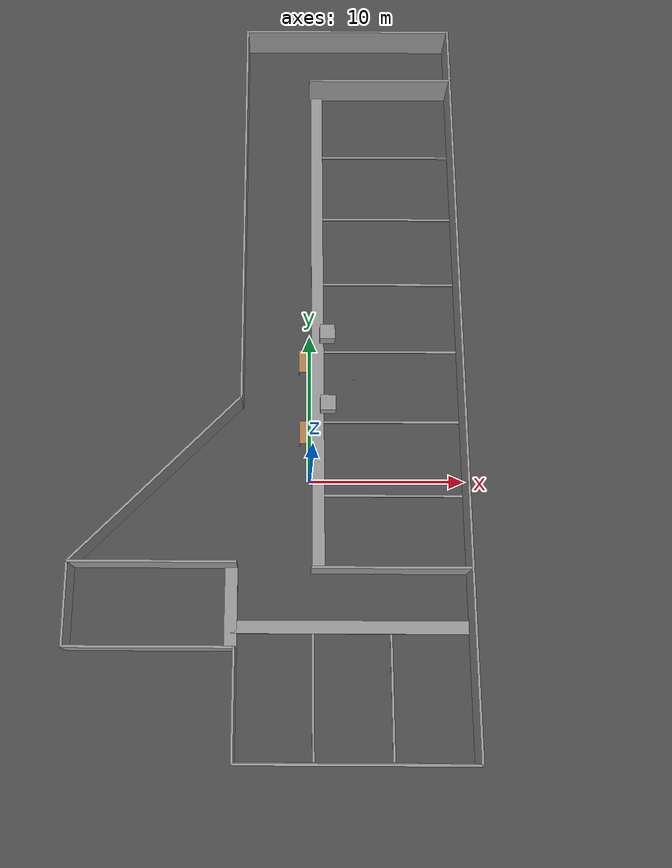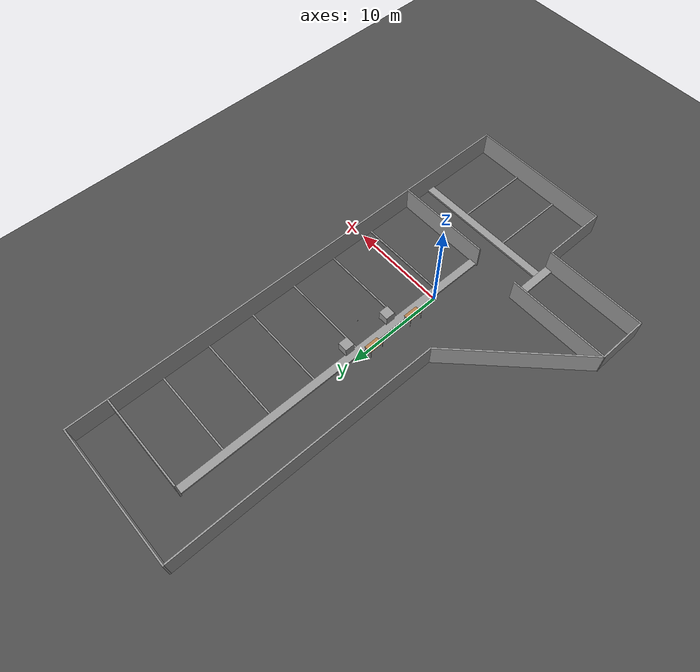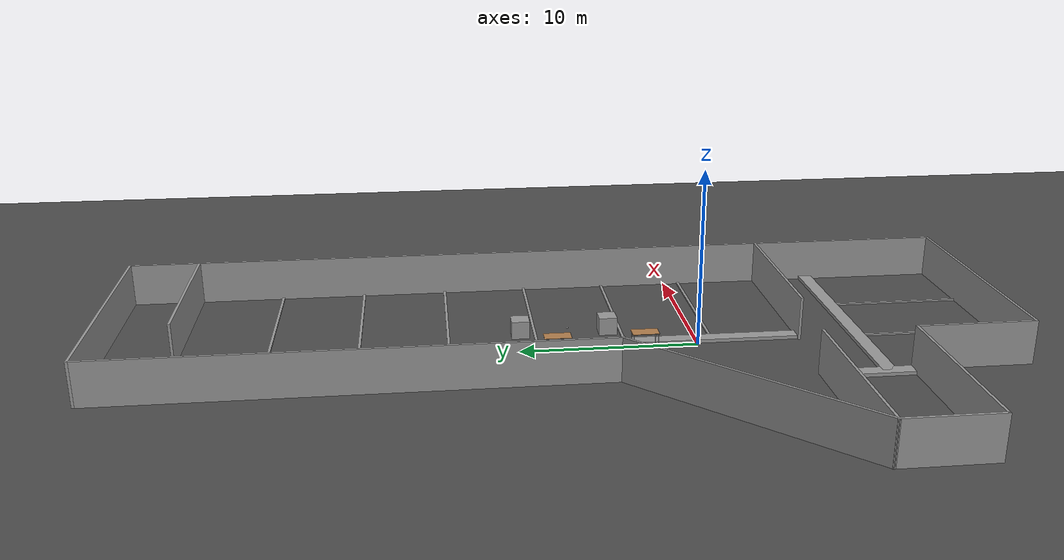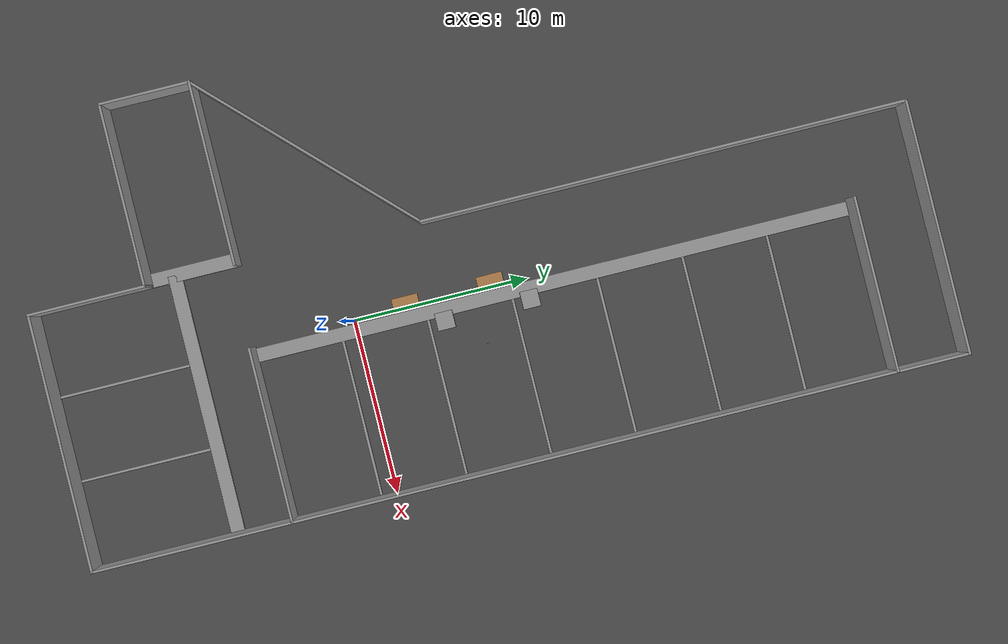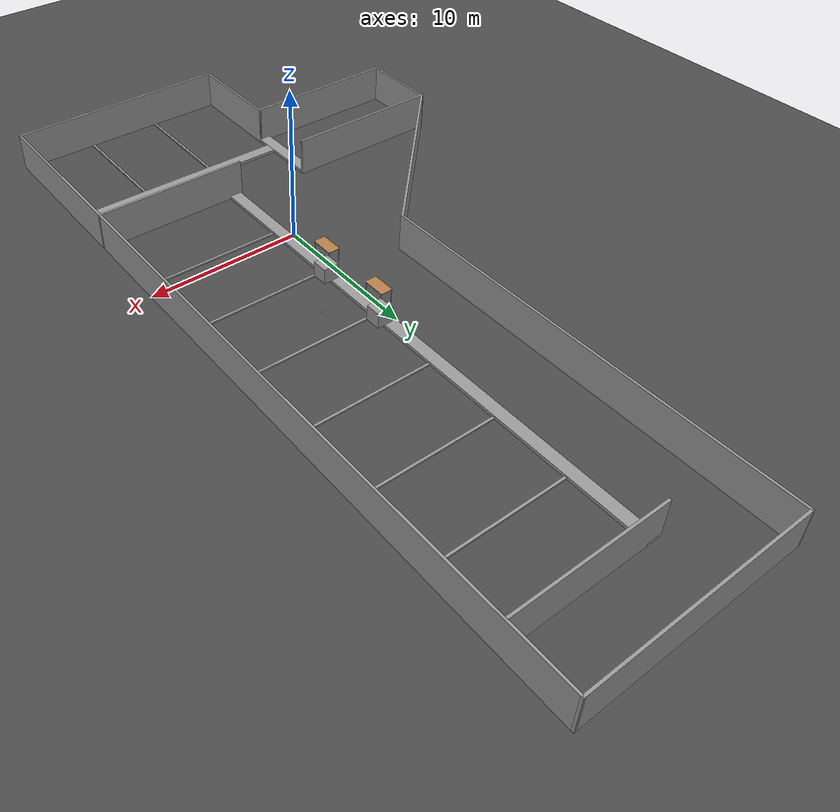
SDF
<sdf version="1.6">
 <world name="default">
  <model name="table_clone">
   <static>1</static>
   <link name="link">
    <collision name="surface">
     <pose>0 0 1 0 -0 0</pose>
     <geometry><box><size>1.5 0.8 0.03</size></box></geometry>
     <surface><friction><ode><mu>0.6</mu><mu2>0.6</mu2></ode></friction></surface>
    </collision>
    <visual name="visual1">
     <pose>0 0 1 0 -0 0</pose>
     <geometry><box><size>1.5 0.8 0.03</size></box></geometry>
     <material>
      <script><uri>file://media/materials/scripts/gazebo.material</uri><name>Gazebo/Wood</name></script>
     </material>
    </visual>
    <collision name="front_left_leg">
     <pose>0.68 0.38 0.5 0 -0 0</pose>
     <geometry><cylinder><radius>0.02</radius><length>1</length></cylinder></geometry>
    </collision>
    <visual name="front_left_leg">
     <pose>0.68 0.38 0.5 0 -0 0</pose>
     <geometry><cylinder><radius>0.02</radius><length>1</length></cylinder></geometry>
     <material>
      <script><uri>file://media/materials/scripts/gazebo.material</uri><name>Gazebo/Grey</name></script>
     </material>
    </visual>
    <collision name="front_right_leg">
     <pose>0.68 -0.38 0.5 0 -0 0</pose>
     <geometry><cylinder><radius>0.02</radius><length>1</length></cylinder></geometry>
    </collision>
    <visual name="front_right_leg">
     <pose>0.68 -0.38 0.5 0 -0 0</pose>
     <geometry><cylinder><radius>0.02</radius><length>1</length></cylinder></geometry>
     <material>
      <script><uri>file://media/materials/scripts/gazebo.material</uri><name>Gazebo/Grey</name></script>
     </material>
    </visual>
    <collision name="back_right_leg">
     <pose>-0.68 -0.38 0.5 0 -0 0</pose>
     <geometry><cylinder><radius>0.02</radius><length>1</length></cylinder></geometry>
    </collision>
    <visual name="back_right_leg">
     <pose>-0.68 -0.38 0.5 0 -0 0</pose>
     <geometry><cylinder><radius>0.02</radius><length>1</length></cylinder></geometry>
     <material>
      <script><uri>file://media/materials/scripts/gazebo.material</uri><name>Gazebo/Grey</name></script>
     </material>
    </visual>
    <collision name="back_left_leg">
     <pose>-0.68 0.38 0.5 0 -0 0</pose>
     <geometry><cylinder><radius>0.02</radius><length>1</length></cylinder></geometry>
    </collision>
    <visual name="back_left_leg">
     <pose>-0.68 0.38 0.5 0 -0 0</pose>
     <geometry><cylinder><radius>0.02</radius><length>1</length></cylinder></geometry>
     <material>
      <script><uri>file://media/materials/scripts/gazebo.material</uri><name>Gazebo/Grey</name></script>
     </material>
    </visual>
   </link>
   <pose>-0.263897 3.07041 0 0 0 -1.56764</pose>
  </model>
  <model name="table_clone_clone_0">
   <static>1</static>
   <link name="link">
    <collision name="surface">
     <pose>0 0 1 0 -0 0</pose>
     <geometry><box><size>1.5 0.8 0.03</size></box></geometry>
     <surface><friction><ode><mu>0.6</mu><mu2>0.6</mu2></ode></friction></surface>
    </collision>
    <visual name="visual1">
     <pose>0 0 1 0 -0 0</pose>
     <geometry><box><size>1.5 0.8 0.03</size></box></geometry>
     <material>
      <script><uri>file://media/materials/scripts/gazebo.material</uri><name>Gazebo/Wood</name></script>
     </material>
    </visual>
    <collision name="front_left_leg">
     <pose>0.68 0.38 0.5 0 -0 0</pose>
     <geometry><cylinder><radius>0.02</radius><length>1</length></cylinder></geometry>
    </collision>
    <visual name="front_left_leg">
     <pose>0.68 0.38 0.5 0 -0 0</pose>
     <geometry><cylinder><radius>0.02</radius><length>1</length></cylinder></geometry>
     <material>
      <script><uri>file://media/materials/scripts/gazebo.material</uri><name>Gazebo/Grey</name></script>
     </material>
    </visual>
    <collision name="front_right_leg">
     <pose>0.68 -0.38 0.5 0 -0 0</pose>
     <geometry><cylinder><radius>0.02</radius><length>1</length></cylinder></geometry>
    </collision>
    <visual name="front_right_leg">
     <pose>0.68 -0.38 0.5 0 -0 0</pose>
     <geometry><cylinder><radius>0.02</radius><length>1</length></cylinder></geometry>
     <material>
      <script><uri>file://media/materials/scripts/gazebo.material</uri><name>Gazebo/Grey</name></script>
     </material>
    </visual>
    <collision name="back_right_leg">
     <pose>-0.68 -0.38 0.5 0 -0 0</pose>
     <geometry><cylinder><radius>0.02</radius><length>1</length></cylinder></geometry>
    </collision>
    <visual name="back_right_leg">
     <pose>-0.68 -0.38 0.5 0 -0 0</pose>
     <geometry><cylinder><radius>0.02</radius><length>1</length></cylinder></geometry>
     <material>
      <script><uri>file://media/materials/scripts/gazebo.material</uri><name>Gazebo/Grey</name></script>
     </material>
    </visual>
    <collision name="back_left_leg">
     <pose>-0.68 0.38 0.5 0 -0 0</pose>
     <geometry><cylinder><radius>0.02</radius><length>1</length></cylinder></geometry>
    </collision>
    <visual name="back_left_leg">
     <pose>-0.68 0.38 0.5 0 -0 0</pose>
     <geometry><cylinder><radius>0.02</radius><length>1</length></cylinder></geometry>
     <material>
      <script><uri>file://media/materials/scripts/gazebo.material</uri><name>Gazebo/Grey</name></script>
     </material>
    </visual>
   </link>
   <pose>-0.311266 7.9439 0 0 0 -1.56764</pose>
  </model>
  <model name="unit_box_4">
   <pose>1.18478 9.88296 1 0 -0 0.000609</pose>
   <link name="link">
    <inertial>
     <mass>1</mass>
     <inertia>
      <ixx>0.166667</ixx>
      <ixy>0</ixy>
      <ixz>0</ixz>
      <iyy>0.166667</iyy>
      <iyz>0</iyz>
      <izz>0.166667</izz>
     </inertia>
    </inertial>
    <collision name="collision"><geometry><box><size>1 1 1</size></box></geometry></collision>
    <visual name="visual">
     <geometry><box><size>1 1 1</size></box></geometry>
     <material>
      <script><name>Gazebo/Grey</name><uri>file://media/materials/scripts/gazebo.material</uri></script>
     </material>
    </visual>
   </link>
  </model>
  <model name="unit_box_5">
   <pose>1.20118 4.9847 1 0 -0 0.000352</pose>
   <link name="link">
    <inertial>
     <mass>1</mass>
     <inertia>
      <ixx>0.166667</ixx>
      <ixy>0</ixy>
      <ixz>0</ixz>
      <iyy>0.166667</iyy>
      <iyz>0</iyz>
      <izz>0.166667</izz>
     </inertia>
    </inertial>
    <collision name="collision"><geometry><box><size>1 1 1</size></box></geometry></collision>
    <visual name="visual">
     <geometry><box><size>1 1 1</size></box></geometry>
     <material>
      <script><name>Gazebo/Grey</name><uri>file://media/materials/scripts/gazebo.material</uri></script>
     </material>
    </visual>
   </link>
  </model>
  <model name="Untitledasdasd">
   <pose>-2.51851 7.69425 0 0 -0 0</pose>
   <link name="Wall_0">
    <collision name="Wall_0_Collision">
     <geometry><box><size>15 0.15 2.5</size></box></geometry>
     <pose>0 0 1.25 0 -0 0</pose>
    </collision>
    <visual name="Wall_0_Visual">
     <pose>0 0 1.25 0 -0 0</pose>
     <geometry><box><size>15 0.15 2.5</size></box></geometry>
     <material>
      <script><uri>file://media/materials/scripts/gazebo.material</uri><name>Gazebo/Grey</name></script>
      <ambient>0.105882 0.0745098 0.0745098 1</ambient>
     </material>
     <meta><layer>0</layer></meta>
    </visual>
    <pose>-7.21413 -7.96136 0 0 -0 -2.35619</pose>
   </link>
   <link name="Wall_14">
    <collision name="Wall_14_Collision">
     <geometry><box><size>27.75 0.15 2.5</size></box></geometry>
     <pose>0 0 1.25 0 -0 0</pose>
    </collision>
    <visual name="Wall_14_Visual">
     <pose>0 0 1.25 0 -0 0</pose>
     <geometry><box><size>27.75 0.15 2.5</size></box></geometry>
     <material>
      <script><uri>file://media/materials/scripts/gazebo.material</uri><name>Gazebo/Grey</name></script>
      <ambient>0.105882 0.0745098 0.0745098 1</ambient>
     </material>
     <meta><layer>0</layer></meta>
    </visual>
    <pose>-1.90935 11.1233 0 0 -0 -1.5708</pose>
   </link>
   <link name="Wall_16">
    <collision name="Wall_16_Collision">
     <geometry><box><size>14.545 0.15 2.5</size></box></geometry>
     <pose>0 0 1.25 0 -0 0</pose>
    </collision>
    <visual name="Wall_16_Visual">
     <pose>0 0 1.25 0 -0 0</pose>
     <geometry><box><size>14.545 0.15 2.5</size></box></geometry>
     <material>
      <script><uri>file://media/materials/scripts/gazebo.material</uri><name>Gazebo/Grey</name></script>
      <ambient>0.105882 0.0745098 0.0745098 1</ambient>
     </material>
     <meta><layer>0</layer></meta>
    </visual>
    <pose>5.28812 24.9308 0 0 -0 0.001049</pose>
   </link>
   <link name="Wall_18">
    <collision name="Wall_18_Collision">
     <geometry><box><size>10 0.15 2.5</size></box></geometry>
     <pose>0 0 1.25 0 -0 0</pose>
    </collision>
    <visual name="Wall_18_Visual">
     <pose>0 0 1.25 0 -0 0</pose>
     <geometry><box><size>10 0.15 2.5</size></box></geometry>
     <material>
      <script><uri>file://media/materials/scripts/gazebo.material</uri><name>Gazebo/Grey</name></script>
      <ambient>0.105882 0.0745098 0.0745098 1</ambient>
     </material>
     <meta><layer>0</layer></meta>
    </visual>
    <pose>7.53565 20.8688 0 0 -0 0</pose>
   </link>
   <link name="Wall_20">
    <collision name="Wall_20_Collision">
     <geometry><box><size>9 0.15 0.1</size></box></geometry>
     <pose>0 0 0.05 0 -0 0</pose>
    </collision>
    <visual name="Wall_20_Visual">
     <pose>0 0 0.05 0 -0 0</pose>
     <geometry><box><size>9 0.15 0.1</size></box></geometry>
     <material>
      <script><uri>file://media/materials/scripts/gazebo.material</uri><name>Gazebo/Grey</name></script>
      <ambient>1 1 1 1</ambient>
     </material>
     <meta><layer>0</layer></meta>
    </visual>
    <pose>7.93325 16.0236 0 0 -0 0</pose>
   </link>
   <link name="Wall_22">
    <collision name="Wall_22_Collision">
     <geometry><box><size>9 0.15 0.1</size></box></geometry>
     <pose>0 0 0.05 0 -0 0</pose>
    </collision>
    <visual name="Wall_22_Visual">
     <pose>0 0 0.05 0 -0 0</pose>
     <geometry><box><size>9 0.15 0.1</size></box></geometry>
     <material>
      <script><uri>file://media/materials/scripts/gazebo.material</uri><name>Gazebo/Grey</name></script>
      <ambient>1 1 1 1</ambient>
     </material>
     <meta><layer>0</layer></meta>
    </visual>
    <pose>7.93325 11.1126 0 0 -0 0</pose>
   </link>
   <link name="Wall_24">
    <collision name="Wall_24_Collision">
     <geometry><box><size>9 0.15 0.1</size></box></geometry>
     <pose>0 0 0.05 0 -0 0</pose>
    </collision>
    <visual name="Wall_24_Visual">
     <pose>0 0 0.05 0 -0 0</pose>
     <geometry><box><size>9 0.15 0.1</size></box></geometry>
     <material>
      <script><uri>file://media/materials/scripts/gazebo.material</uri><name>Gazebo/Grey</name></script>
      <ambient>1 1 1 1</ambient>
     </material>
     <meta><layer>0</layer></meta>
    </visual>
    <pose>7.91425 6.16455 0 0 -0 0</pose>
   </link>
   <link name="Wall_26">
    <collision name="Wall_26_Collision">
     <geometry><box><size>9 0.15 0.1</size></box></geometry>
     <pose>0 0 0.05 0 -0 0</pose>
    </collision>
    <visual name="Wall_26_Visual">
     <pose>0 0 0.05 0 -0 0</pose>
     <geometry><box><size>9 0.15 0.1</size></box></geometry>
     <material>
      <script><uri>file://media/materials/scripts/gazebo.material</uri><name>Gazebo/Grey</name></script>
      <ambient>1 1 1 1</ambient>
     </material>
     <meta><layer>0</layer></meta>
    </visual>
    <pose>7.93325 1.24455 0 0 -0 0</pose>
   </link>
   <link name="Wall_28">
    <collision name="Wall_28_Collision">
     <geometry><box><size>9 0.15 0.1</size></box></geometry>
     <pose>0 0 0.05 0 -0 0</pose>
    </collision>
    <visual name="Wall_28_Visual">
     <pose>0 0 0.05 0 -0 0</pose>
     <geometry><box><size>9 0.15 0.1</size></box></geometry>
     <material>
      <script><uri>file://media/materials/scripts/gazebo.material</uri><name>Gazebo/Grey</name></script>
      <ambient>1 1 1 1</ambient>
     </material>
     <meta><layer>0</layer></meta>
    </visual>
    <pose>7.90425 -3.66545 0 0 -0 0</pose>
   </link>
   <link name="Wall_3">
    <collision name="Wall_3_Collision">
     <geometry><box><size>5.25 0.15 2.5</size></box></geometry>
     <pose>0 0 1.25 0 -0 0</pose>
    </collision>
    <visual name="Wall_3_Visual">
     <pose>0 0 1.25 0 -0 0</pose>
     <geometry><box><size>5.25 0.15 2.5</size></box></geometry>
     <material>
      <script><uri>file://media/materials/scripts/gazebo.material</uri><name>Gazebo/Grey</name></script>
      <ambient>0.105882 0.0745098 0.0745098 1</ambient>
     </material>
     <meta><layer>0</layer></meta>
    </visual>
    <pose>-12.4644 -15.7616 0 0 -0 -1.5708</pose>
   </link>
   <link name="Wall_30">
    <collision name="Wall_30_Collision">
     <geometry><box><size>9 0.15 0.1</size></box></geometry>
     <pose>0 0 0.05 0 -0 0</pose>
    </collision>
    <visual name="Wall_30_Visual">
     <pose>0 0 0.05 0 -0 0</pose>
     <geometry><box><size>9 0.15 0.1</size></box></geometry>
     <material>
      <script><uri>file://media/materials/scripts/gazebo.material</uri><name>Gazebo/Grey</name></script>
      <ambient>1 1 1 1</ambient>
     </material>
     <meta><layer>0</layer></meta>
    </visual>
    <pose>7.93325 -8.60445 0 0 -0 0</pose>
   </link>
   <link name="Wall_33">
    <collision name="Wall_33_Collision">
     <geometry><box><size>10 0.15 2.5</size></box></geometry>
     <pose>0 0 1.25 0 -0 0</pose>
    </collision>
    <visual name="Wall_33_Visual">
     <pose>0 0 1.25 0 -0 0</pose>
     <geometry><box><size>10 0.15 2.5</size></box></geometry>
     <material>
      <script><uri>file://media/materials/scripts/gazebo.material</uri><name>Gazebo/Grey</name></script>
      <ambient>0.105882 0.0745098 0.0745098 1</ambient>
     </material>
     <meta><layer>0</layer></meta>
    </visual>
    <pose>7.57047 -13.5431 0 0 -0 0</pose>
   </link>
   <link name="Wall_37">
    <collision name="Wall_37_Collision">
     <geometry><box><size>15 0.8 0.2</size></box></geometry>
     <pose>0 0 0.1 0 -0 0</pose>
    </collision>
    <visual name="Wall_37_Visual">
     <pose>0 0 0.1 0 -0 0</pose>
     <geometry><box><size>15 0.8 0.2</size></box></geometry>
     <material>
      <script><uri>file://media/materials/scripts/gazebo.material</uri><name>Gazebo/Grey</name></script>
      <ambient>1 1 1 1</ambient>
     </material>
     <meta><layer>0</layer></meta>
    </visual>
    <pose>5.05877 -16.9274 0 0 -0 0</pose>
   </link>
   <link name="Wall_40">
    <collision name="Wall_40_Collision">
     <geometry><box><size>5.25 0.8 0.2</size></box></geometry>
     <pose>0 0 0.1 0 -0 0</pose>
    </collision>
    <visual name="Wall_40_Visual">
     <pose>0 0 0.1 0 -0 0</pose>
     <geometry><box><size>5.25 0.8 0.2</size></box></geometry>
     <material>
      <script><uri>file://media/materials/scripts/gazebo.material</uri><name>Gazebo/Grey</name></script>
      <ambient>1 1 1 1</ambient>
     </material>
     <meta><layer>0</layer></meta>
    </visual>
    <pose>-2.43969 -15.7711 0 0 -0 -1.5708</pose>
   </link>
   <link name="Wall_43">
    <collision name="Wall_43_Collision">
     <geometry><box><size>7.75 0.15 0.1</size></box></geometry>
     <pose>0 0 0.05 0 -0 0</pose>
    </collision>
    <visual name="Wall_43_Visual">
     <pose>0 0 0.05 0 -0 0</pose>
     <geometry><box><size>7.75 0.15 0.1</size></box></geometry>
     <material>
      <script><uri>file://media/materials/scripts/gazebo.material</uri><name>Gazebo/Grey</name></script>
      <ambient>1 1 1 1</ambient>
     </material>
     <meta><layer>0</layer></meta>
    </visual>
    <pose>2.70025 -21.0684 0 0 -0 1.5708</pose>
   </link>
   <link name="Wall_45">
    <collision name="Wall_45_Collision">
     <geometry><box><size>7.75 0.15 0.1</size></box></geometry>
     <pose>0 0 0.05 0 -0 0</pose>
    </collision>
    <visual name="Wall_45_Visual">
     <pose>0 0 0.05 0 -0 0</pose>
     <geometry><box><size>7.75 0.15 0.1</size></box></geometry>
     <material>
      <script><uri>file://media/materials/scripts/gazebo.material</uri><name>Gazebo/Grey</name></script>
      <ambient>1 1 1 1</ambient>
     </material>
     <meta><layer>0</layer></meta>
    </visual>
    <pose>7.57625 -21.1384 0 0 -0 1.5708</pose>
   </link>
   <link name="Wall_47">
    <collision name="Wall_47_Collision">
     <geometry><box><size>10.5 0.15 2.5</size></box></geometry>
     <pose>0 0 1.25 0 -0 0</pose>
    </collision>
    <visual name="Wall_47_Visual">
     <pose>0 0 1.25 0 -0 0</pose>
     <geometry><box><size>10.5 0.15 2.5</size></box></geometry>
     <material>
      <script><uri>file://media/materials/scripts/gazebo.material</uri><name>Gazebo/Grey</name></script>
      <ambient>0.105882 0.0745098 0.0745098 1</ambient>
     </material>
     <meta><layer>0</layer></meta>
    </visual>
    <pose>-7.2894 -13.2116 0 0 -0 0</pose>
   </link>
   <link name="Wall_49">
    <collision name="Wall_49_Collision">
     <geometry><box><size>34.5 0.8 0.2</size></box></geometry>
     <pose>0 0 0.1 0 -0 0</pose>
    </collision>
    <visual name="Wall_49_Visual">
     <pose>0 0 0.1 0 -0 0</pose>
     <geometry><box><size>34.5 0.8 0.2</size></box></geometry>
     <material>
      <script><uri>file://media/materials/scripts/gazebo.material</uri><name>Gazebo/Grey</name></script>
      <ambient>1 1 1 1</ambient>
     </material>
     <meta><layer>0</layer></meta>
    </visual>
    <pose>3.07569 3.69647 0 0 -0 -1.5708</pose>
   </link>
   <link name="Wall_6">
    <collision name="Wall_6_Collision">
     <geometry><box><size>10.5 0.15 2.5</size></box></geometry>
     <pose>0 0 1.25 0 -0 0</pose>
    </collision>
    <visual name="Wall_6_Visual">
     <pose>0 0 1.25 0 -0 0</pose>
     <geometry><box><size>10.5 0.15 2.5</size></box></geometry>
     <material>
      <script><uri>file://media/materials/scripts/gazebo.material</uri><name>Gazebo/Grey</name></script>
      <ambient>0.105882 0.0745098 0.0745098 1</ambient>
     </material>
     <meta><layer>0</layer></meta>
    </visual>
    <pose>-7.2894 -18.3116 0 0 -0 0</pose>
   </link>
   <link name="Wall_7">
    <collision name="Wall_7_Collision">
     <geometry><box><size>6.75 0.15 2.5</size></box></geometry>
     <pose>0 0 1.25 0 -0 0</pose>
    </collision>
    <visual name="Wall_7_Visual">
     <pose>0 0 1.25 0 -0 0</pose>
     <geometry><box><size>6.75 0.15 2.5</size></box></geometry>
     <material>
      <script><uri>file://media/materials/scripts/gazebo.material</uri><name>Gazebo/Grey</name></script>
      <ambient>0.105882 0.0745098 0.0745098 1</ambient>
     </material>
     <meta><layer>0</layer></meta>
    </visual>
    <pose>-2.1144 -21.6116 0 0 -0 -1.5708</pose>
   </link>
   <link name="Wall_8">
    <collision name="Wall_8_Collision">
     <geometry><box><size>14.75 0.15 2.5</size></box></geometry>
     <pose>0 0 1.25 0 -0 0</pose>
    </collision>
    <visual name="Wall_8_Visual">
     <pose>0 0 1.25 0 -0 0</pose>
     <geometry><box><size>14.75 0.15 2.5</size></box></geometry>
     <material>
      <script><uri>file://media/materials/scripts/gazebo.material</uri><name>Gazebo/Grey</name></script>
      <ambient>0.105882 0.0745098 0.0745098 1</ambient>
     </material>
     <meta><layer>0</layer></meta>
    </visual>
    <pose>5.1856 -24.9116 0 0 -0 0</pose>
   </link>
   <link name="Wall_9">
    <collision name="Wall_9_Collision">
     <geometry><box><size>50 0.15 2.5</size></box></geometry>
     <pose>0 0 1.25 0 -0 0</pose>
    </collision>
    <visual name="Wall_9_Visual">
     <pose>0 0 1.25 0 -0 0</pose>
     <geometry><box><size>50 0.15 2.5</size></box></geometry>
     <material>
      <script><uri>file://media/materials/scripts/gazebo.material</uri><name>Gazebo/Grey</name></script>
      <ambient>0.105882 0.0745098 0.0745098 1</ambient>
     </material>
     <meta><layer>0</layer></meta>
    </visual>
    <pose>12.4856 0.01337 0 0 -0 1.5708</pose>
   </link>
   <static>1</static>
  </model>
  <model name="frc2016_ball_clone_4_clone_27">
   <pose>3 7 0.10041 0 -0 0</pose>
   <link name="link">
    <inertial>
     <mass>0.213</mass>
     <inertia>
      <ixx>0.00322667</ixx>
      <ixy>0</ixy>
      <ixz>0</ixz>
      <iyy>0.00322667</iyy>
      <iyz>0</iyz>
      <izz>0.00322667</izz>
     </inertia>
    </inertial>
    <visual name="visual"><geometry><sphere><radius>0.0506132</radius></sphere></geometry></visual>
    <collision name="collision">
     <geometry><sphere><radius>0.0506132</radius></sphere></geometry>
     <surface>
      <bounce><restitution_coefficient>0.15937</restitution_coefficient><threshold>0</threshold></bounce>
      <contact><ode><max_vel>100</max_vel><min_depth>0.001</min_depth></ode></contact>
     </surface>
    </collision>
   </link>
  </model>
  <model name="asphalt_plane">
   <static>1</static>
   <link name="link">
    <collision name="collision"><geometry><box><size>1231.34 219.833 0.1</size></box></geometry></collision>
    <visual name="visual">
     <cast_shadows>0</cast_shadows>
     <geometry><box><size>1231.34 219.833 0.1</size></box></geometry>
     <material>
      <script>
       <uri>model://asphalt_plane/materials/scripts</uri>
       <uri>model://asphalt_plane/materials/textures</uri>
       <name>vrc/asphalt</name>
      </script>
     </material>
    </visual>
   </link>
   <pose>-29.4694 28.4475 -0.062447 0 -0 0</pose>
  </model>
 </world>
</sdf>
